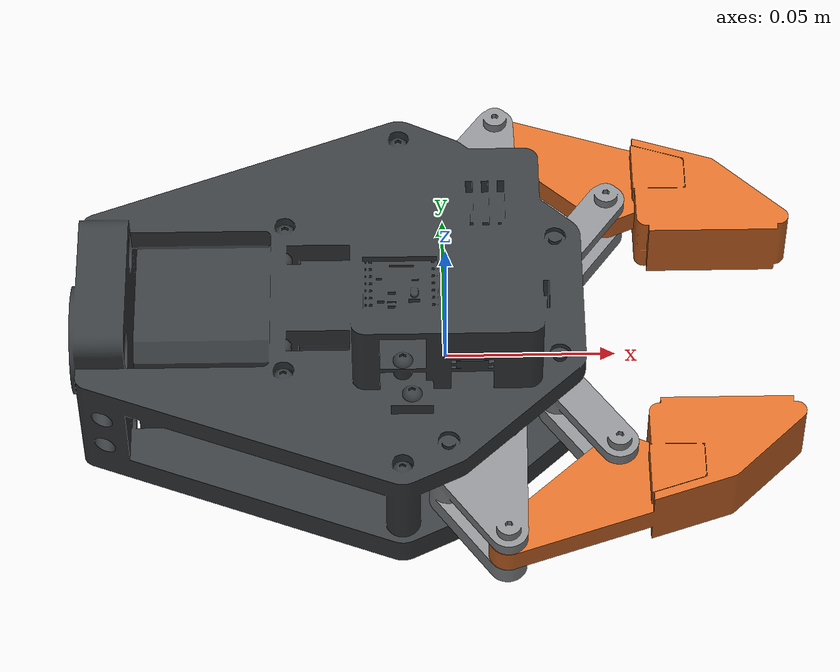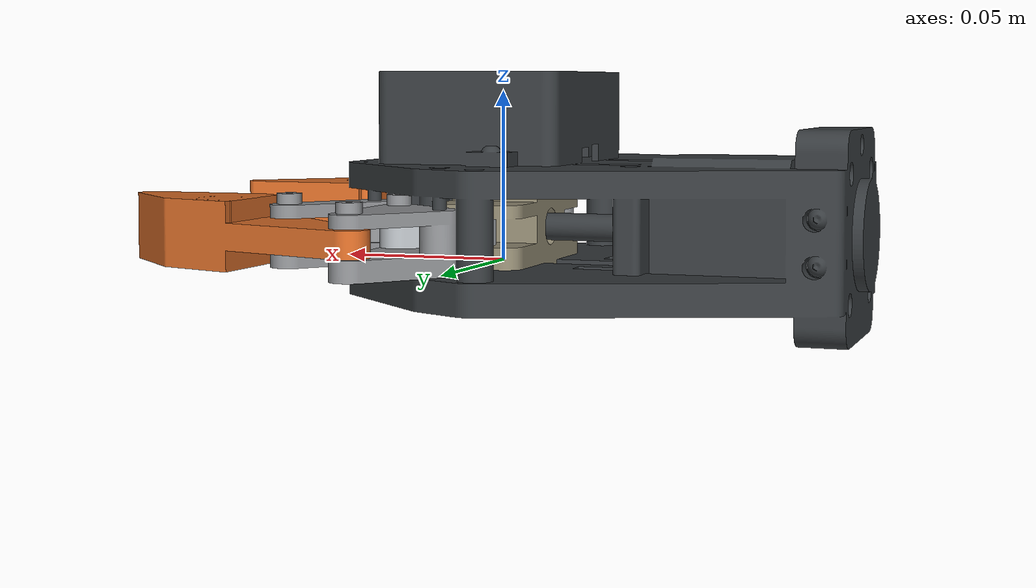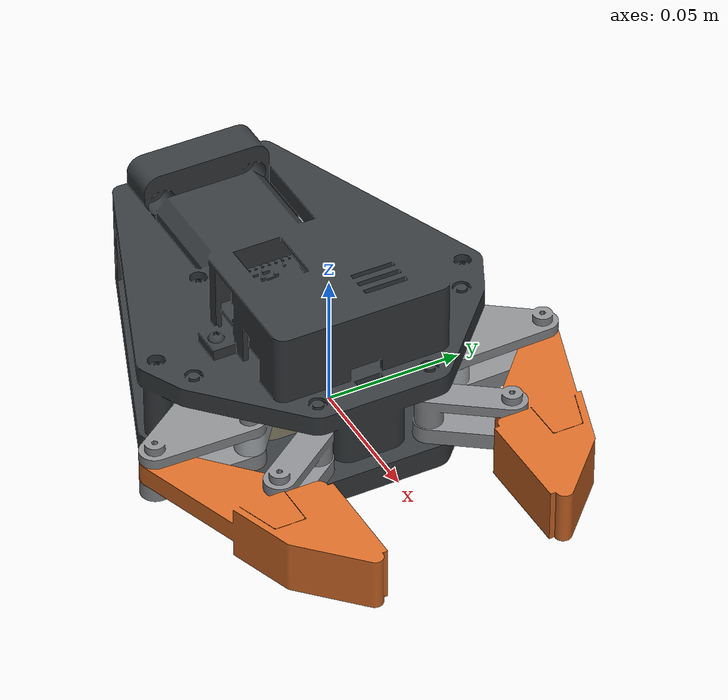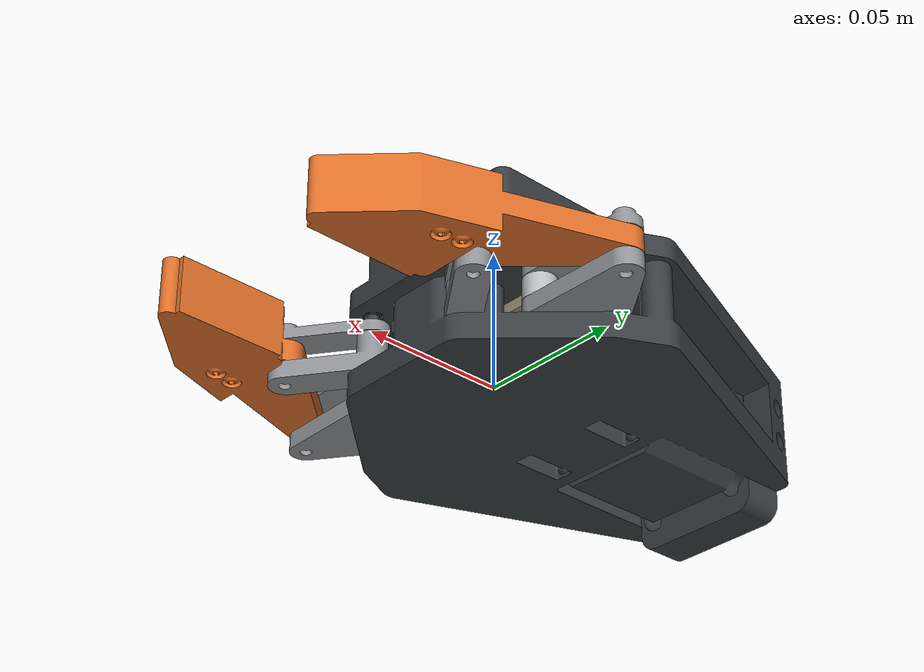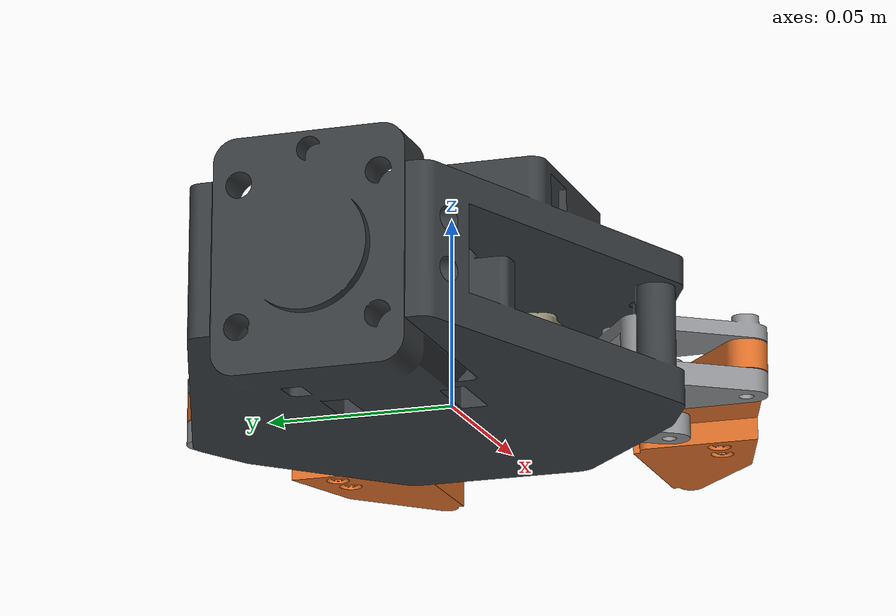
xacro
<?xml version="1.0"?>
<robot name="lead_screw_gripper" xmlns:xacro="http://www.ros.org/wiki/xacro">

  <!-- The full gripper from the Onshape export, plus what ros2_control needs to run it. -->
  <xacro:arg name="port" default="/dev/ttyACM0"/>
  <xacro:arg name="use_mock_hardware" default="false"/>
  <xacro:arg name="home_on_activate" default="true"/>

  <xacro:include filename="$(find lead_screw_gripper_description)/urdf/lead_screw_gripper_full.urdf.xacro"/>

  <link name="jaw_gap_link"/>
  <joint name="jaw_gap" type="prismatic">
    <parent link="base_link"/>
    <child link="jaw_gap_link"/>
    <axis xyz="0 1 0"/>
    <limit lower="0.0" upper="0.0605" effort="100.0" velocity="0.12"/>
  </joint>

  <ros2_control name="LeadScrewGripper" type="system">
    <hardware>
      <xacro:if value="$(arg use_mock_hardware)">
        <!-- ros2_control's built-in pretend hardware: the state copies the command at once. Checks the
             robot description and controller setup without any serial port. -->
        <plugin>mock_components/GenericSystem</plugin>
      </xacro:if>
      <xacro:unless value="$(arg use_mock_hardware)">
        <plugin>lead_screw_gripper_hardware/GripperSystem</plugin>
        <param name="port">$(arg port)</param>
        <param name="timeout_ms">50</param>
        <param name="home_on_activate">$(arg home_on_activate)</param>
        <param name="home_timeout_s">20</param>
        <param name="default_force">30</param>
      </xacro:unless>
    </hardware>
    <joint name="jaw_gap">
      <command_interface name="position">
        <param name="min">0.0</param>
        <param name="max">0.0605</param>
      </command_interface>
      <!-- Grip force limit, N per jaw. The firmware turns it into motor current (predicted, not measured). -->
      <command_interface name="effort"/>
      <state_interface name="position">
        <param name="initial_value">0.03</param>
      </state_interface>
      <state_interface name="velocity"/>
    </joint>
  </ros2_control>

</robot>

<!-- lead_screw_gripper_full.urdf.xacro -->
<robot name="lead_screw_gripper" xmlns:xacro="http://www.ros.org/wiki/xacro">

  <xacro:include filename="$(find lead_screw_gripper_description)/onshape/lead_screw_gripper.urdf"/>

</robot>

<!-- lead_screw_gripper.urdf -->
<!-- Generated using onshape-to-robot -->
<!-- Onshape https://cad.onshape.com/documents/21eb00e5286d05130362fe39/v/5cdac080a8e3ed3cdc956c12/e/1637fb3a48d9ca739a013816 -->
<robot name="lead_screw_gripper">
  <!-- Link base_link -->
  <link name="base_link">
    <inertial>
      <origin xyz="-0.0502696 6.01763e-05 0.0115142" rpy="0 0 0"/>
      <mass value="0.893804"/>
      <inertia ixx="0.000518783" ixy="-2.46723e-06" ixz="-5.96083e-05" iyy="0.00135135" iyz="-1.91356e-06" izz="0.00152391"/>
    </inertial>
    <!-- Part base_link_parts -->
    <visual>
      <origin xyz="-0.0502696 6.01763e-05 0.0115142" rpy="0 -0 0"/>
      <geometry>
        <mesh filename="package://lead_screw_gripper_description/onshape/assets/merged/base_link_visual.stl"/>
      </geometry>
      <material name="base_link_parts_material">
        <color rgba="0.216878 0.234037 0.246909 1"/>
      </material>
    </visual>
  </link>
  <!-- Link bell_crank_U_link -->
  <link name="bell_crank_U_link">
    <inertial>
      <origin xyz="0.0127652 -0.00436964 -0.000173751" rpy="0 0 0"/>
      <mass value="0.0135165"/>
      <inertia ixx="2.99928e-06" ixy="8.5137e-08" ixz="8.6611e-08" iyy="1.17674e-06" iyz="-1.8601e-08" izz="2.97914e-06"/>
    </inertial>
    <!-- Part bell_crank_U_link_parts -->
    <visual>
      <origin xyz="0.0127652 -0.00436964 -0.000173751" rpy="3.14159 -0 0"/>
      <geometry>
        <mesh filename="package://lead_screw_gripper_description/onshape/assets/merged/bell_crank_U_link_visual.stl"/>
      </geometry>
      <material name="bell_crank_U_link_parts_material">
        <color rgba="0.554282 0.562059 0.575021 1"/>
      </material>
    </visual>
  </link>
  <!-- Link finger_U_link -->
  <link name="finger_U_link">
    <inertial>
      <origin xyz="0.0223399 0.0507657 -0.00010495" rpy="0 0 0"/>
      <mass value="0.0294141"/>
      <inertia ixx="1.26318e-05" ixy="-5.04243e-06" ixz="2.532e-09" iyy="4.78822e-06" iyz="-9.068e-09" izz="1.59699e-05"/>
    </inertial>
    <!-- Part finger_U_link_parts -->
    <visual>
      <origin xyz="0.0223399 0.0507657 -0.00010495" rpy="3.14159 0 0.677441"/>
      <geometry>
        <mesh filename="package://lead_screw_gripper_description/onshape/assets/merged/finger_U_link_visual.stl"/>
      </geometry>
      <material name="finger_U_link_parts_material">
        <color rgba="0.854343 0.427803 0.158577 1"/>
      </material>
    </visual>
  </link>
  <!-- Frame closing_F2_U_2 (dummy link + fixed joint) -->
  <link name="closing_F2_U_2">
    <origin xyz="0 0 0" rpy="0 -0 0"/>
    <inertial>
      <origin xyz="0 0 0" rpy="0 0 0"/>
      <mass value="1e-9"/>
      <inertia ixx="0" ixy="0" ixz="0" iyy="0" iyz="0" izz="0"/>
    </inertial>
  </link>
  <joint name="closing_F2_U_2_frame" type="fixed">
    <origin xyz="0.00641464 0.0435115 0" rpy="3.14159 -0 0.677441"/>
    <parent link="finger_U_link"/>
    <child link="closing_F2_U_2"/>
    <axis xyz="0 0 0"/>
  </joint>
  <!-- Joint from bell_crank_U_link to finger_U_link -->
  <joint name="finger_U" type="revolute">
    <origin xyz="0.0163121 -0.0227578 0" rpy="0 0 -0.677441"/>
    <parent link="bell_crank_U_link"/>
    <child link="finger_U_link"/>
    <axis xyz="0 0 1"/>
    <limit effort="20" velocity="10" lower="-1.2198" upper="0"/>
  </joint>
  <!-- Link conrod_U_link -->
  <link name="conrod_U_link">
    <inertial>
      <origin xyz="-0.0113355 -0.000215631 -5e-05" rpy="0 0 0"/>
      <mass value="0.0025036"/>
      <inertia ixx="3.7431e-08" ixy="-3.285e-09" ixz="-0" iyy="2.10056e-07" iyz="0" izz="2.23386e-07"/>
    </inertial>
    <!-- Part conrod_U_link_parts -->
    <visual>
      <origin xyz="-0.0113355 -0.000215631 -5e-05" rpy="3.14159 0 0.677441"/>
      <geometry>
        <mesh filename="package://lead_screw_gripper_description/onshape/assets/merged/conrod_U_link_visual.stl"/>
      </geometry>
      <material name="conrod_U_link_parts_material">
        <color rgba="0.709804 0.729412 0.74902 1"/>
      </material>
    </visual>
  </link>
  <!-- Frame closing_C_U_2 (dummy link + fixed joint) -->
  <link name="closing_C_U_2">
    <origin xyz="0 0 0" rpy="0 -0 0"/>
    <inertial>
      <origin xyz="0 0 0" rpy="0 0 0"/>
      <mass value="1e-9"/>
      <inertia ixx="0" ixy="0" ixz="0" iyy="0" iyz="0" izz="0"/>
    </inertial>
  </link>
  <joint name="closing_C_U_2_frame" type="fixed">
    <origin xyz="-0.022671 -0.000431263 0" rpy="3.14159 0 0.282782"/>
    <parent link="conrod_U_link"/>
    <child link="closing_C_U_2"/>
    <axis xyz="0 0 0"/>
  </joint>
  <!-- Joint from bell_crank_U_link to conrod_U_link -->
  <joint name="conrod_U" type="revolute">
    <origin xyz="0.0169948 0.0121814 0" rpy="0 0 -0.677441"/>
    <parent link="bell_crank_U_link"/>
    <child link="conrod_U_link"/>
    <axis xyz="0 0 1"/>
    <limit effort="0.5" velocity="10" lower="-0.825" upper="0"/>
  </joint>
  <!-- Joint from base_link to bell_crank_U_link -->
  <joint name="bell_crank_U" type="revolute">
    <origin xyz="0 0.0509701 0.01025" rpy="3.14159 -0 0"/>
    <parent link="base_link"/>
    <child link="bell_crank_U_link"/>
    <axis xyz="0 0 1"/>
    <limit effort="3" velocity="10" lower="0" upper="1.2198"/>
  </joint>
  <!-- Link front_crank_U_link -->
  <link name="front_crank_U_link">
    <inertial>
      <origin xyz="0.0103034 -0.0143747 -0.000262005" rpy="0 0 0"/>
      <mass value="0.00667164"/>
      <inertia ixx="8.87427e-07" ixy="3.9702e-07" ixz="6.918e-08" iyy="6.181e-07" iyz="-9.6516e-08" izz="9.32036e-07"/>
    </inertial>
    <!-- Part front_crank_U_link_parts -->
    <visual>
      <origin xyz="0.0103034 -0.0143747 -0.000262005" rpy="3.14159 -0 0"/>
      <geometry>
        <mesh filename="package://lead_screw_gripper_description/onshape/assets/merged/front_crank_U_link_visual.stl"/>
      </geometry>
      <material name="front_crank_U_link_parts_material">
        <color rgba="0.551246 0.558971 0.571846 1"/>
      </material>
    </visual>
  </link>
  <!-- Frame closing_F2_U_1 (dummy link + fixed joint) -->
  <link name="closing_F2_U_1">
    <origin xyz="0 0 0" rpy="0 -0 0"/>
    <inertial>
      <origin xyz="0 0 0" rpy="0 0 0"/>
      <mass value="1e-9"/>
      <inertia ixx="0" ixy="0" ixz="0" iyy="0" iyz="0" izz="0"/>
    </inertial>
  </link>
  <joint name="closing_F2_U_1_frame" type="fixed">
    <origin xyz="0.0163121 -0.0227578 0" rpy="3.14159 -0 -0.677441"/>
    <parent link="front_crank_U_link"/>
    <child link="closing_F2_U_1"/>
    <axis xyz="0 0 0"/>
  </joint>
  <!-- Joint from base_link to front_crank_U_link -->
  <joint name="front_crank_U" type="revolute">
    <origin xyz="0.0322712 0.0210876 0.01025" rpy="3.14159 -0 0"/>
    <parent link="base_link"/>
    <child link="front_crank_U_link"/>
    <axis xyz="0 0 1"/>
    <limit effort="1" velocity="10" lower="0" upper="1.2198"/>
  </joint>
  <!-- Link bell_crank_L_link -->
  <link name="bell_crank_L_link">
    <inertial>
      <origin xyz="0.0127652 0.00436964 -0.000173751" rpy="0 0 0"/>
      <mass value="0.0135165"/>
      <inertia ixx="2.99928e-06" ixy="-8.5137e-08" ixz="8.6612e-08" iyy="1.17674e-06" iyz="1.8601e-08" izz="2.97915e-06"/>
    </inertial>
    <!-- Part bell_crank_L_link_parts -->
    <visual>
      <origin xyz="0.0127652 0.00436964 -0.000173751" rpy="3.14159 -0 0"/>
      <geometry>
        <mesh filename="package://lead_screw_gripper_description/onshape/assets/merged/bell_crank_L_link_visual.stl"/>
      </geometry>
      <material name="bell_crank_L_link_parts_material">
        <color rgba="0.554283 0.562059 0.575021 1"/>
      </material>
    </visual>
  </link>
  <!-- Link finger_L_link -->
  <link name="finger_L_link">
    <inertial>
      <origin xyz="0.0223399 -0.0507657 -0.000104948" rpy="0 0 0"/>
      <mass value="0.0294141"/>
      <inertia ixx="1.26318e-05" ixy="5.04243e-06" ixz="2.533e-09" iyy="4.78822e-06" iyz="9.068e-09" izz="1.59699e-05"/>
    </inertial>
    <!-- Part finger_L_link_parts -->
    <visual>
      <origin xyz="0.0223399 -0.0507657 -0.000104948" rpy="3.14159 0 -0.677441"/>
      <geometry>
        <mesh filename="package://lead_screw_gripper_description/onshape/assets/merged/finger_L_link_visual.stl"/>
      </geometry>
      <material name="finger_L_link_parts_material">
        <color rgba="0.854343 0.427803 0.158577 1"/>
      </material>
    </visual>
  </link>
  <!-- Frame closing_F2_L_2 (dummy link + fixed joint) -->
  <link name="closing_F2_L_2">
    <origin xyz="0 0 0" rpy="0 -0 0"/>
    <inertial>
      <origin xyz="0 0 0" rpy="0 0 0"/>
      <mass value="1e-9"/>
      <inertia ixx="0" ixy="0" ixz="0" iyy="0" iyz="0" izz="0"/>
    </inertial>
  </link>
  <joint name="closing_F2_L_2_frame" type="fixed">
    <origin xyz="0.00641464 -0.0435115 0" rpy="3.14159 -0 -0.677441"/>
    <parent link="finger_L_link"/>
    <child link="closing_F2_L_2"/>
    <axis xyz="0 0 0"/>
  </joint>
  <!-- Joint from bell_crank_L_link to finger_L_link -->
  <joint name="finger_L" type="revolute">
    <origin xyz="0.0163121 0.0227578 0" rpy="0 -0 0.677441"/>
    <parent link="bell_crank_L_link"/>
    <child link="finger_L_link"/>
    <axis xyz="0 0 1"/>
    <limit effort="20" velocity="10" lower="0" upper="1.2198"/>
  </joint>
  <!-- Link conrod_L_link -->
  <link name="conrod_L_link">
    <inertial>
      <origin xyz="-0.0113355 0.000215631 -5e-05" rpy="0 0 0"/>
      <mass value="0.0025036"/>
      <inertia ixx="3.7431e-08" ixy="3.285e-09" ixz="0" iyy="2.10056e-07" iyz="0" izz="2.23386e-07"/>
    </inertial>
    <!-- Part conrod_L_link_parts -->
    <visual>
      <origin xyz="-0.0113355 0.000215631 -5e-05" rpy="3.14159 0 -0.677441"/>
      <geometry>
        <mesh filename="package://lead_screw_gripper_description/onshape/assets/merged/conrod_L_link_visual.stl"/>
      </geometry>
      <material name="conrod_L_link_parts_material">
        <color rgba="0.709804 0.729412 0.74902 1"/>
      </material>
    </visual>
  </link>
  <!-- Frame closing_C_L_2 (dummy link + fixed joint) -->
  <link name="closing_C_L_2">
    <origin xyz="0 0 0" rpy="0 -0 0"/>
    <inertial>
      <origin xyz="0 0 0" rpy="0 0 0"/>
      <mass value="1e-9"/>
      <inertia ixx="0" ixy="0" ixz="0" iyy="0" iyz="0" izz="0"/>
    </inertial>
  </link>
  <joint name="closing_C_L_2_frame" type="fixed">
    <origin xyz="-0.022671 0.000431263 0" rpy="3.14159 0 -0.282782"/>
    <parent link="conrod_L_link"/>
    <child link="closing_C_L_2"/>
    <axis xyz="0 0 0"/>
  </joint>
  <!-- Joint from bell_crank_L_link to conrod_L_link -->
  <joint name="conrod_L" type="revolute">
    <origin xyz="0.0169948 -0.0121814 0" rpy="0 -0 0.677441"/>
    <parent link="bell_crank_L_link"/>
    <child link="conrod_L_link"/>
    <axis xyz="0 0 1"/>
    <limit effort="0.5" velocity="10" lower="0" upper="0.825"/>
  </joint>
  <!-- Joint from base_link to bell_crank_L_link -->
  <joint name="bell_crank_L" type="revolute">
    <origin xyz="0 -0.0509701 0.01025" rpy="3.14159 -0 0"/>
    <parent link="base_link"/>
    <child link="bell_crank_L_link"/>
    <axis xyz="0 0 1"/>
    <limit effort="20" velocity="10" lower="-1.2198" upper="0"/>
  </joint>
  <!-- Link front_crank_L_link -->
  <link name="front_crank_L_link">
    <inertial>
      <origin xyz="0.0103034 0.0143747 -0.000262005" rpy="0 0 0"/>
      <mass value="0.00667164"/>
      <inertia ixx="8.87427e-07" ixy="-3.9702e-07" ixz="6.918e-08" iyy="6.181e-07" iyz="9.6516e-08" izz="9.32036e-07"/>
    </inertial>
    <!-- Part front_crank_L_link_parts -->
    <visual>
      <origin xyz="0.0103034 0.0143747 -0.000262005" rpy="3.14159 -0 0"/>
      <geometry>
        <mesh filename="package://lead_screw_gripper_description/onshape/assets/merged/front_crank_L_link_visual.stl"/>
      </geometry>
      <material name="front_crank_L_link_parts_material">
        <color rgba="0.551246 0.558971 0.571846 1"/>
      </material>
    </visual>
  </link>
  <!-- Frame closing_F2_L_1 (dummy link + fixed joint) -->
  <link name="closing_F2_L_1">
    <origin xyz="0 0 0" rpy="0 -0 0"/>
    <inertial>
      <origin xyz="0 0 0" rpy="0 0 0"/>
      <mass value="1e-9"/>
      <inertia ixx="0" ixy="0" ixz="0" iyy="0" iyz="0" izz="0"/>
    </inertial>
  </link>
  <joint name="closing_F2_L_1_frame" type="fixed">
    <origin xyz="0.0163121 0.0227578 0" rpy="3.14159 -0 0.677441"/>
    <parent link="front_crank_L_link"/>
    <child link="closing_F2_L_1"/>
    <axis xyz="0 0 0"/>
  </joint>
  <!-- Joint from base_link to front_crank_L_link -->
  <joint name="front_crank_L" type="revolute">
    <origin xyz="0.0322712 -0.0210876 0.01025" rpy="3.14159 -0 0"/>
    <parent link="base_link"/>
    <child link="front_crank_L_link"/>
    <axis xyz="0 0 1"/>
    <limit effort="1" velocity="10" lower="-1.2198" upper="0"/>
  </joint>
  <!-- Link carriage_link -->
  <link name="carriage_link">
    <inertial>
      <origin xyz="0 0.000454995 -0.0158538" rpy="0 0 0"/>
      <mass value="0.0372895"/>
      <inertia ixx="3.44468e-06" ixy="-0" ixz="0" iyy="9.9148e-06" iyz="-3.5253e-08" izz="1.0001e-05"/>
    </inertial>
    <!-- Part carriage_link_parts -->
    <visual>
      <origin xyz="0 0.000454995 -0.0158538" rpy="1.5708 1.5708 0"/>
      <geometry>
        <mesh filename="package://lead_screw_gripper_description/onshape/assets/merged/carriage_link_visual.stl"/>
      </geometry>
      <material name="carriage_link_parts_material">
        <color rgba="0.568939 0.539651 0.447382 1"/>
      </material>
    </visual>
  </link>
  <!-- Frame closing_C_U_1 (dummy link + fixed joint) -->
  <link name="closing_C_U_1">
    <origin xyz="0 0 0" rpy="0 -0 0"/>
    <inertial>
      <origin xyz="0 0 0" rpy="0 0 0"/>
      <mass value="1e-9"/>
      <inertia ixx="0" ixy="0" ixz="0" iyy="0" iyz="0" izz="0"/>
    </inertial>
  </link>
  <joint name="closing_C_U_1_frame" type="fixed">
    <origin xyz="0.0249145 0 -0.015344" rpy="1.5708 1.5708 0"/>
    <parent link="carriage_link"/>
    <child link="closing_C_U_1"/>
    <axis xyz="0 0 0"/>
  </joint>
  <!-- Frame closing_C_L_1 (dummy link + fixed joint) -->
  <link name="closing_C_L_1">
    <origin xyz="0 0 0" rpy="0 -0 0"/>
    <inertial>
      <origin xyz="0 0 0" rpy="0 0 0"/>
      <mass value="1e-9"/>
      <inertia ixx="0" ixy="0" ixz="0" iyy="0" iyz="0" izz="0"/>
    </inertial>
  </link>
  <joint name="closing_C_L_1_frame" type="fixed">
    <origin xyz="-0.0249145 0 -0.015344" rpy="1.5708 1.5708 0"/>
    <parent link="carriage_link"/>
    <child link="closing_C_L_1"/>
    <axis xyz="0 0 0"/>
  </joint>
  <!-- Joint from base_link to carriage_link -->
  <joint name="carriage" type="prismatic">
    <origin xyz="-0.0162842 0 0.01025" rpy="-1.5708 -0 1.5708"/>
    <parent link="base_link"/>
    <child link="carriage_link"/>
    <axis xyz="0 0 1"/>
    <limit effort="50" velocity="0.1" lower="0" upper="0.0266"/>
  </joint>
</robot>
